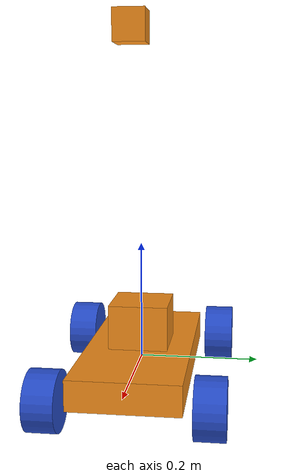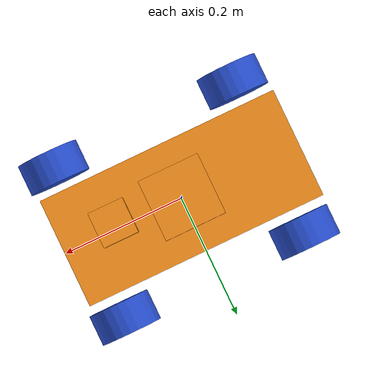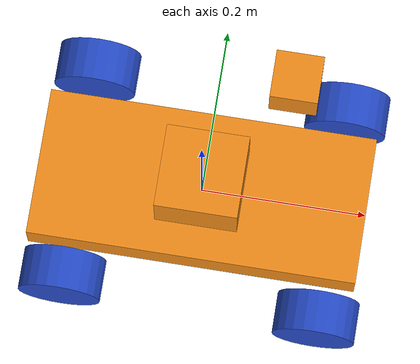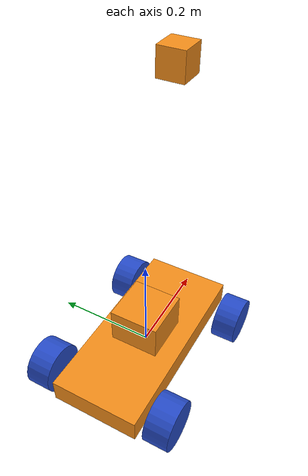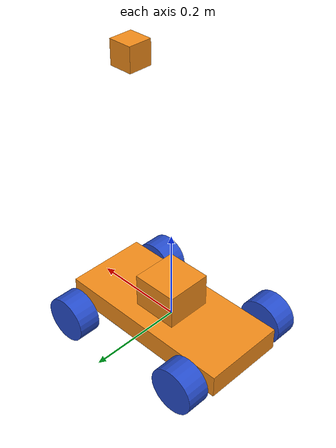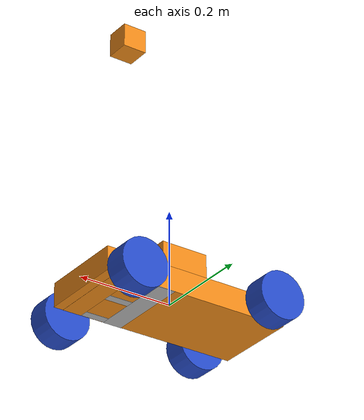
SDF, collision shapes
<sdf version='1.7'>
  <model name='Pedro'>
    <link name='chassis'>
      <inertial>
        <pose>0.08 0 -0.0125 0 -0 0</pose>
        <mass>2.00002</mass>
        <inertia>
          <ixx>1.00322</ixx>
          <ixy>0</ixy>
          <ixz>0.002</ixz>
          <iyy>1.02915</iyy>
          <iyz>0</iyz>
          <izz>1.02634</izz>
        </inertia>
      </inertial>
      <collision name='chassis_collision'>
        <pose>0 0 0 0 -0 0</pose>
        <geometry>
          <box>
            <size>0.4 0.18 0.05</size>
          </box>
        </geometry>
        <surface>
          <contact>
            <ode/>
          </contact>
          <friction>
            <ode>
              <mu>0.2</mu>
              <mu2>0.2</mu2>
            </ode>
          </friction>
        </surface>
      </collision>
      <collision name='chassis_fixed_joint_lump__camera_link_collision_1'>
        <pose>0.1 0 0.55 0 -0 0</pose>
        <geometry>
          <box>
            <size>0.05 0.05 0.05</size>
          </box>
        </geometry>
        <surface>
          <contact>
            <ode/>
          </contact>
          <friction>
            <ode/>
          </friction>
        </surface>
      </collision>
      <collision name='chassis_fixed_joint_lump__front_link_collision_2'>
        <pose>0.16 0 -0.025 0 -0 0</pose>
        <geometry>
          <box>
            <size>0.04 0.18 0.0005</size>
          </box>
        </geometry>
      </collision>
      <collision name='chassis_fixed_joint_lump__hokuyo_link_collision_3'>
        <pose>0 0 0.05 0 -0 0</pose>
        <geometry>
          <box>
            <size>0.1 0.1 0.1</size>
          </box>
        </geometry>
        <surface>
          <contact>
            <ode/>
          </contact>
          <friction>
            <ode/>
          </friction>
        </surface>
      </collision>
      <visual name='chassis_visual'>
        <pose>0 0 0 0 -0 0</pose>
        <geometry>
          <box>
            <size>0.4 0.18 0.05</size>
          </box>
        </geometry>
        <material>
          <script>
            <name>Gazebo/Orange</name>
            <uri>file://media/materials/scripts/gazebo.material</uri>
          </script>
        </material>
      </visual>
      <visual name='chassis_fixed_joint_lump__camera_link_visual_1'>
        <pose>0.1 0 0.05 0 -0 0</pose>
        <geometry>
          <box>
            <size>0.05 0.05 0.05</size>
          </box>
        </geometry>
        <material>
          <script>
            <name>Gazebo/Red</name>
            <uri>file://media/materials/scripts/gazebo.material</uri>
          </script>
        </material>
      </visual>
      <visual name='chassis_fixed_joint_lump__front_link_visual_2'>
        <pose>0.16 0 -0.025 0 -0 0</pose>
        <geometry>
          <box>
            <size>0.04 0.18 0.0005</size>
          </box>
        </geometry>
      </visual>
      <visual name='chassis_fixed_joint_lump__hokuyo_link_visual_3'>
        <pose>0 0 0.05 0 -0 0</pose>
        <geometry>
          <mesh>
            <scale>1 1 1</scale>
            <uri>hokuyo.dae</uri>
          </mesh>
        </geometry>
        <material>
          <script>
            <name>Gazebo/Black</name>
            <uri>file://media/materials/scripts/gazebo.material</uri>
          </script>
        </material>
      </visual>
      <gravity>1</gravity>
      <sensor name='camera' type='depth'>
        <visualize>1</visualize>
        <update_rate>10</update_rate>
        <camera>
          <horizontal_fov>1.089</horizontal_fov>
          <image>
            <format>B8G8R8</format>
            <width>640</width>
            <height>480</height>
          </image>
          <clip>
            <near>0.05</near>
            <far>8</far>
          </clip>
        </camera>
        <plugin name='camera_controller' filename='libgazebo_ros_camera.so'>
          <frame_name>camera_link_optical</frame_name>
          <min_depth>0.1</min_depth>
          <max_depth>100.0</max_depth>
        </plugin>
        <pose>0.1 0 0.05 0 -0 0</pose>
      </sensor>
      <sensor name='laser' type='gpu_ray'>
        <visualize>1</visualize>
        <update_rate>10</update_rate>
        <ray>
          <scan>
            <horizontal>
              <samples>360</samples>
              <resolution>1</resolution>
              <min_angle>-3.14</min_angle>
              <max_angle>3.14</max_angle>
            </horizontal>
          </scan>
          <range>
            <min>0.3</min>
            <max>12</max>
          </range>
        </ray>
        <always_on>1</always_on>
        <plugin name='laser_controller' filename='libgazebo_ros_ray_sensor.so'>
          <ros>
            <argument>~/out:=scan</argument>
          </ros>
          <output_type>sensor_msgs/LaserScan</output_type>
          <frame_name>laser_frame</frame_name>
        </plugin>
        <plugin name='pc2_gpu' filename='libgazebo_ros_ray_sensor.so'>
          <ros>
            <namespace>/gpu_ray</namespace>
            <remapping>~/out:=pointcloud2</remapping>
          </ros>
          <output_type>sensor_msgs/PointCloud2</output_type>
        </plugin>
        <plugin name='pc_gpu' filename='libgazebo_ros_ray_sensor.so'>
          <ros>
            <namespace>/gpu_ray</namespace>
            <remapping>~/out:=pointcloud</remapping>
          </ros>
          <output_type>sensor_msgs/PointCloud</output_type>
        </plugin>
        <plugin name='laserscan_gpu' filename='libgazebo_ros_ray_sensor.so'>
          <ros>
            <namespace>/gpu_ray</namespace>
            <remapping>~/out:=laserscan</remapping>
          </ros>
          <output_type>sensor_msgs/LaserScan</output_type>
        </plugin>
        <plugin name='range_gpu' filename='libgazebo_ros_ray_sensor.so'>
          <ros>
            <namespace>/gpu_ray</namespace>
            <remapping>~/out:=range</remapping>
          </ros>
          <output_type>sensor_msgs/Range</output_type>
        </plugin>
        <pose>0 0 0 0 -0 0</pose>
      </sensor>
    </link>
    <joint name='BL_hinge' type='revolute'>
      <pose relative_to='chassis'>-0.15 0.13 0 0 -0 0</pose>
      <parent>chassis</parent>
      <child>BL_wheel</child>
      <axis>
        <xyz>0 1 0</xyz>
        <limit>
          <lower>-1e+16</lower>
          <upper>1e+16</upper>
        </limit>
        <dynamics>
          <spring_reference>0</spring_reference>
          <spring_stiffness>0</spring_stiffness>
        </dynamics>
      </axis>
    </joint>
    <link name='BL_wheel'>
      <pose relative_to='BL_hinge'>0 0 0 0 -0 0</pose>
      <inertial>
        <pose>0 0 0 0 1.57075 1.57075</pose>
        <mass>0.05</mass>
        <inertia>
          <ixx>4.16667e-05</ixx>
          <ixy>0</ixy>
          <ixz>0</ixz>
          <iyy>4.16667e-05</iyy>
          <iyz>0</iyz>
          <izz>6.25e-05</izz>
        </inertia>
      </inertial>
      <collision name='BL_wheel_collision'>
        <pose>0 0 0 -1.57075 1.5708 0</pose>
        <geometry>
          <cylinder>
            <length>0.05</length>
            <radius>0.05</radius>
          </cylinder>
        </geometry>
        <surface>
          <contact>
            <ode/>
          </contact>
          <friction>
            <ode>
              <mu>0.2</mu>
              <mu2>0.2</mu2>
            </ode>
          </friction>
        </surface>
      </collision>
      <visual name='BL_wheel_visual'>
        <pose>0 0 0 -1.57075 1.5708 0</pose>
        <geometry>
          <cylinder>
            <length>0.05</length>
            <radius>0.05</radius>
          </cylinder>
        </geometry>
        <material>
          <script>
            <name>Gazebo/Blue</name>
            <uri>file://media/materials/scripts/gazebo.material</uri>
          </script>
        </material>
      </visual>
      <gravity>1</gravity>
    </link>
    <joint name='BR_hinge' type='revolute'>
      <pose relative_to='chassis'>-0.15 -0.13 0 0 -0 0</pose>
      <parent>chassis</parent>
      <child>BR_wheel</child>
      <axis>
        <xyz>0 1 0</xyz>
        <limit>
          <lower>-1e+16</lower>
          <upper>1e+16</upper>
        </limit>
        <dynamics>
          <spring_reference>0</spring_reference>
          <spring_stiffness>0</spring_stiffness>
        </dynamics>
      </axis>
    </joint>
    <link name='BR_wheel'>
      <pose relative_to='BR_hinge'>0 0 0 0 -0 0</pose>
      <inertial>
        <pose>0 0 0 0 1.57075 1.57075</pose>
        <mass>0.05</mass>
        <inertia>
          <ixx>4.16667e-05</ixx>
          <ixy>0</ixy>
          <ixz>0</ixz>
          <iyy>4.16667e-05</iyy>
          <iyz>0</iyz>
          <izz>6.25e-05</izz>
        </inertia>
      </inertial>
      <collision name='BR_wheel_collision'>
        <pose>0 0 0 -1.57075 1.5708 0</pose>
        <geometry>
          <cylinder>
            <length>0.05</length>
            <radius>0.05</radius>
          </cylinder>
        </geometry>
        <surface>
          <contact>
            <ode/>
          </contact>
          <friction>
            <ode>
              <mu>0.2</mu>
              <mu2>0.2</mu2>
            </ode>
          </friction>
        </surface>
      </collision>
      <visual name='BR_wheel_visual'>
        <pose>0 0 0 -1.57075 1.5708 0</pose>
        <geometry>
          <cylinder>
            <length>0.05</length>
            <radius>0.05</radius>
          </cylinder>
        </geometry>
        <material>
          <script>
            <name>Gazebo/Blue</name>
            <uri>file://media/materials/scripts/gazebo.material</uri>
          </script>
        </material>
      </visual>
      <gravity>1</gravity>
    </link>
    <joint name='front_left_bar_joint' type='revolute'>
      <pose relative_to='chassis'>0.16 0.08 -0.025 0 -0 0</pose>
      <parent>chassis</parent>
      <child>front_left_bar_link</child>
      <axis>
        <xyz>0 0 1</xyz>
        <limit>
          <lower>-0.5</lower>
          <upper>0.5</upper>
          <effort>100</effort>
          <velocity>10</velocity>
        </limit>
        <dynamics>
          <spring_reference>0</spring_reference>
          <spring_stiffness>0</spring_stiffness>
        </dynamics>
      </axis>
    </joint>
    <link name='front_left_bar_link'>
      <pose relative_to='front_left_bar_joint'>0 0 0 0 -0 0</pose>
      <inertial>
        <pose>0 0 0 0 -0 0</pose>
        <mass>1</mass>
        <inertia>
          <ixx>1</ixx>
          <ixy>0</ixy>
          <ixz>0</ixz>
          <iyy>1</iyy>
          <iyz>0</iyz>
          <izz>1</izz>
        </inertia>
      </inertial>
      <collision name='front_left_bar_link_collision'>
        <pose>-0.05 0 0 0 -0 0</pose>
        <geometry>
          <box>
            <size>0.08 0.018 0.0005</size>
          </box>
        </geometry>
      </collision>
      <visual name='front_left_bar_link_visual'>
        <pose>-0.05 0 0 0 -0 0</pose>
        <geometry>
          <box>
            <size>0.08 0.018 0.0005</size>
          </box>
        </geometry>
      </visual>
    </link>
    <joint name='front_left_wheel_joint' type='revolute'>
      <pose relative_to='front_left_bar_link'>0 0.05 0 0 -0 0</pose>
      <parent>front_left_bar_link</parent>
      <child>FL_wheel</child>
      <axis>
        <xyz>0 1 0</xyz>
        <limit>
          <lower>-1e+16</lower>
          <upper>1e+16</upper>
        </limit>
        <dynamics>
          <spring_reference>0</spring_reference>
          <spring_stiffness>0</spring_stiffness>
        </dynamics>
      </axis>
    </joint>
    <link name='FL_wheel'>
      <pose relative_to='front_left_wheel_joint'>0 0 0 0 -0 0</pose>
      <inertial>
        <pose>0 0 0 0 1.57075 1.57075</pose>
        <mass>0.05</mass>
        <inertia>
          <ixx>4.16667e-05</ixx>
          <ixy>0</ixy>
          <ixz>0</ixz>
          <iyy>4.16667e-05</iyy>
          <iyz>0</iyz>
          <izz>6.25e-05</izz>
        </inertia>
      </inertial>
      <collision name='FL_wheel_collision'>
        <pose>0 0 0 -1.57075 1.5708 0</pose>
        <geometry>
          <cylinder>
            <length>0.05</length>
            <radius>0.05</radius>
          </cylinder>
        </geometry>
        <surface>
          <contact>
            <ode/>
          </contact>
          <friction>
            <ode>
              <mu>0.2</mu>
              <mu2>0.2</mu2>
            </ode>
          </friction>
        </surface>
      </collision>
      <visual name='FL_wheel_visual'>
        <pose>0 0 0 -1.57075 1.5708 0</pose>
        <geometry>
          <cylinder>
            <length>0.05</length>
            <radius>0.05</radius>
          </cylinder>
        </geometry>
        <material>
          <script>
            <name>Gazebo/Blue</name>
            <uri>file://media/materials/scripts/gazebo.material</uri>
          </script>
        </material>
      </visual>
      <gravity>1</gravity>
    </link>
    <joint name='front_right_bar_joint' type='revolute'>
      <pose relative_to='chassis'>0.16 -0.08 -0.025 0 -0 0</pose>
      <parent>chassis</parent>
      <child>front_right_bar_link</child>
      <axis>
        <xyz>0 0 1</xyz>
        <limit>
          <lower>-0.5</lower>
          <upper>0.5</upper>
          <effort>100</effort>
          <velocity>10</velocity>
        </limit>
        <dynamics>
          <spring_reference>0</spring_reference>
          <spring_stiffness>0</spring_stiffness>
        </dynamics>
      </axis>
    </joint>
    <link name='front_right_bar_link'>
      <pose relative_to='front_right_bar_joint'>0 0 0 0 -0 0</pose>
      <inertial>
        <pose>0 0 0 0 -0 0</pose>
        <mass>1</mass>
        <inertia>
          <ixx>1</ixx>
          <ixy>0</ixy>
          <ixz>0</ixz>
          <iyy>1</iyy>
          <iyz>0</iyz>
          <izz>1</izz>
        </inertia>
      </inertial>
      <collision name='front_right_bar_link_collision'>
        <pose>-0.05 0 0 0 -0 0</pose>
        <geometry>
          <box>
            <size>0.08 0.018 0.0005</size>
          </box>
        </geometry>
      </collision>
      <visual name='front_right_bar_link_visual'>
        <pose>-0.05 0 0 0 -0 0</pose>
        <geometry>
          <box>
            <size>0.08 0.018 0.0005</size>
          </box>
        </geometry>
      </visual>
    </link>
    <joint name='front_right_wheel_joint' type='revolute'>
      <pose relative_to='front_right_bar_link'>0 -0.05 0 0 -0 0</pose>
      <parent>front_right_bar_link</parent>
      <child>FR_wheel</child>
      <axis>
        <xyz>0 1 0</xyz>
        <limit>
          <lower>-1e+16</lower>
          <upper>1e+16</upper>
        </limit>
        <dynamics>
          <spring_reference>0</spring_reference>
          <spring_stiffness>0</spring_stiffness>
        </dynamics>
      </axis>
    </joint>
    <link name='FR_wheel'>
      <pose relative_to='front_right_wheel_joint'>0 0 0 0 -0 0</pose>
      <inertial>
        <pose>0.15 0.13 0 0 1.57075 1.57075</pose>
        <mass>0.05</mass>
        <inertia>
          <ixx>4.16667e-05</ixx>
          <ixy>0</ixy>
          <ixz>0</ixz>
          <iyy>4.16667e-05</iyy>
          <iyz>0</iyz>
          <izz>6.25e-05</izz>
        </inertia>
      </inertial>
      <collision name='FR_wheel_collision'>
        <pose>0 0 0 -1.57075 1.5708 0</pose>
        <geometry>
          <cylinder>
            <length>0.05</length>
            <radius>0.05</radius>
          </cylinder>
        </geometry>
        <surface>
          <contact>
            <ode/>
          </contact>
          <friction>
            <ode>
              <mu>0.2</mu>
              <mu2>0.2</mu2>
            </ode>
          </friction>
        </surface>
      </collision>
      <visual name='FR_wheel_visual'>
        <pose>0 0 0 -1.57075 1.5708 0</pose>
        <geometry>
          <cylinder>
            <length>0.05</length>
            <radius>0.05</radius>
          </cylinder>
        </geometry>
        <material>
          <script>
            <name>Gazebo/Blue</name>
            <uri>file://media/materials/scripts/gazebo.material</uri>
          </script>
        </material>
      </visual>
      <gravity>1</gravity>
    </link>
    <joint name='steer_joint' type='revolute'>
      <pose relative_to='chassis'>0.16 0 -0.025 0 -0 0</pose>
      <parent>chassis</parent>
      <child>steer_link</child>
      <axis>
        <xyz>0 0 1</xyz>
        <limit>
          <lower>-0.5</lower>
          <upper>0.5</upper>
          <effort>100</effort>
          <velocity>10</velocity>
        </limit>
        <dynamics>
          <spring_reference>0</spring_reference>
          <spring_stiffness>0</spring_stiffness>
        </dynamics>
      </axis>
    </joint>
    <link name='steer_link'>
      <pose relative_to='steer_joint'>0 0 0 0 -0 0</pose>
      <inertial>
        <pose>0 0 0 0 -0 0</pose>
        <mass>1</mass>
        <inertia>
          <ixx>1</ixx>
          <ixy>0</ixy>
          <ixz>0</ixz>
          <iyy>1</iyy>
          <iyz>0</iyz>
          <izz>1</izz>
        </inertia>
      </inertial>
      <collision name='steer_link_collision'>
        <pose>-0.05 0 0 0 -0 0</pose>
        <geometry>
          <box>
            <size>0.08 0.018 0.0005</size>
          </box>
        </geometry>
      </collision>
      <visual name='steer_link_visual'>
        <pose>-0.05 0 0 0 -0 0</pose>
        <geometry>
          <box>
            <size>0.08 0.018 0.0005</size>
          </box>
        </geometry>
      </visual>
    </link>
    <joint name='ackermann_joint' type='revolute'>
      <pose relative_to='steer_link'>-0.09 0 0 0 -0 0</pose>
      <parent>steer_link</parent>
      <child>ackermann_bar_link</child>
      <axis>
        <xyz>0 0 1</xyz>
        <limit>
          <lower>-0.5</lower>
          <upper>0.5</upper>
          <effort>100</effort>
          <velocity>10</velocity>
        </limit>
        <dynamics>
          <spring_reference>0</spring_reference>
          <spring_stiffness>0</spring_stiffness>
        </dynamics>
      </axis>
    </joint>
    <link name='ackermann_bar_link'>
      <pose relative_to='ackermann_joint'>0 0 0 0 -0 0</pose>
      <inertial>
        <pose>0 0 0 0 -0 0</pose>
        <mass>1</mass>
        <inertia>
          <ixx>1</ixx>
          <ixy>0</ixy>
          <ixz>0</ixz>
          <iyy>1</iyy>
          <iyz>0</iyz>
          <izz>1</izz>
        </inertia>
      </inertial>
      <collision name='ackermann_bar_link_collision'>
        <pose>0 0 0 0 -0 0</pose>
        <geometry>
          <box>
            <size>0.04 0.18 0.0005</size>
          </box>
        </geometry>
      </collision>
      <visual name='ackermann_bar_link_visual'>
        <pose>0 0 0 0 -0 0</pose>
        <geometry>
          <box>
            <size>0.04 0.18 0.0005</size>
          </box>
        </geometry>
      </visual>
    </link>
    <static>0</static>
    <plugin name='gazebo_ros_control' filename='libgazebo_ros_control.so'>
      <robotNamespace>/pedro</robotNamespace>
    </plugin>
  </model>
</sdf>
